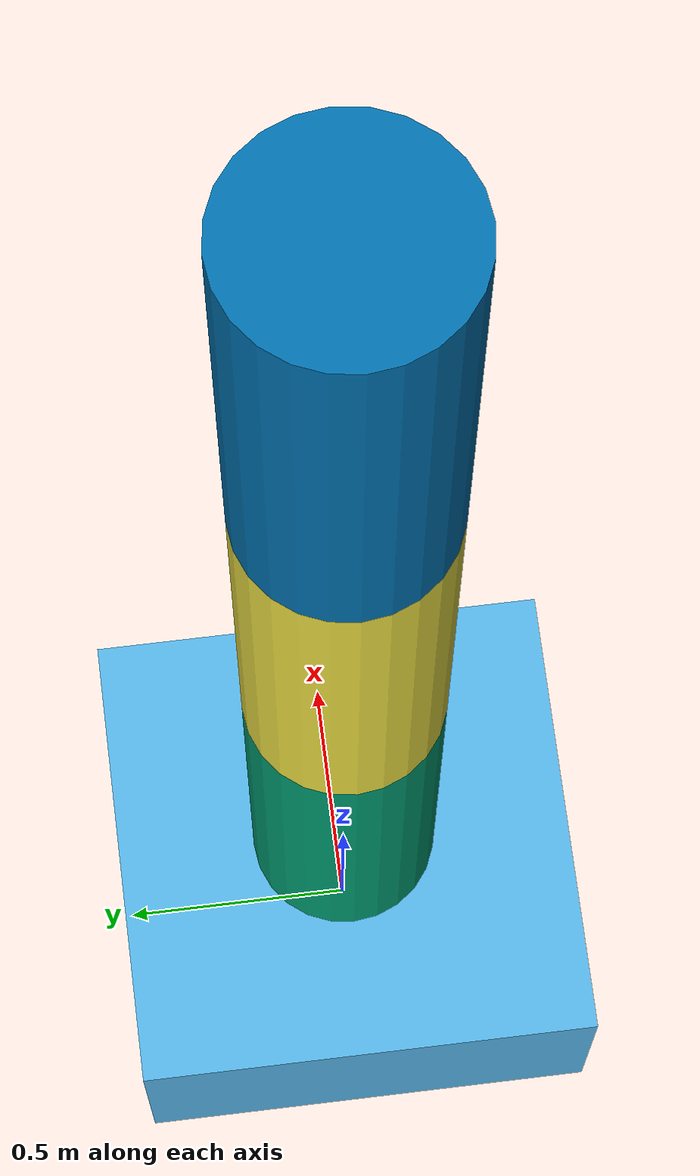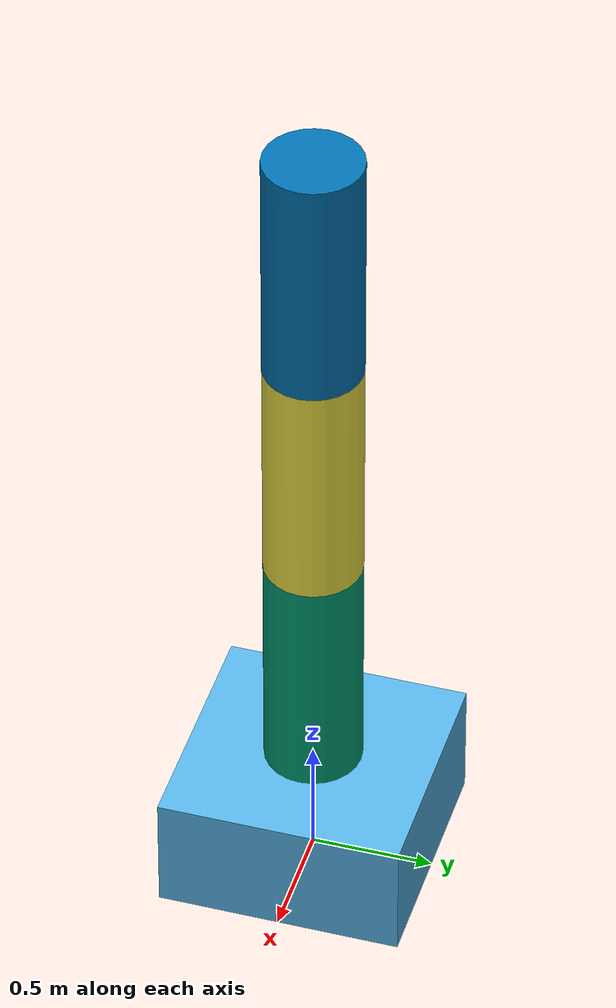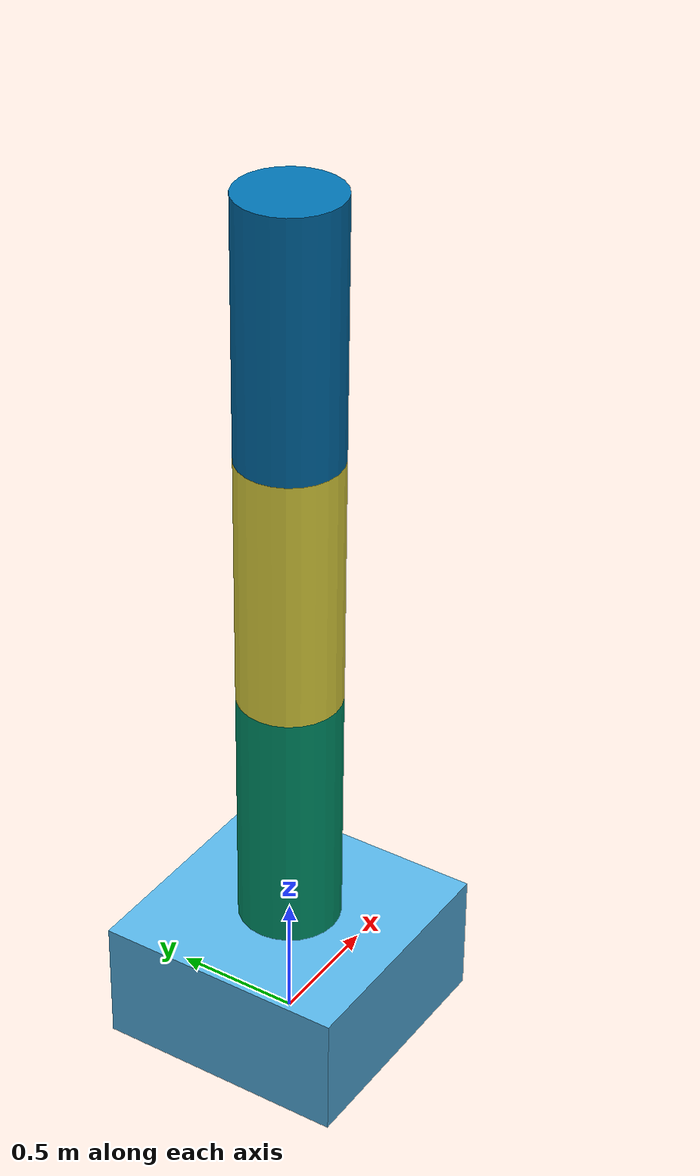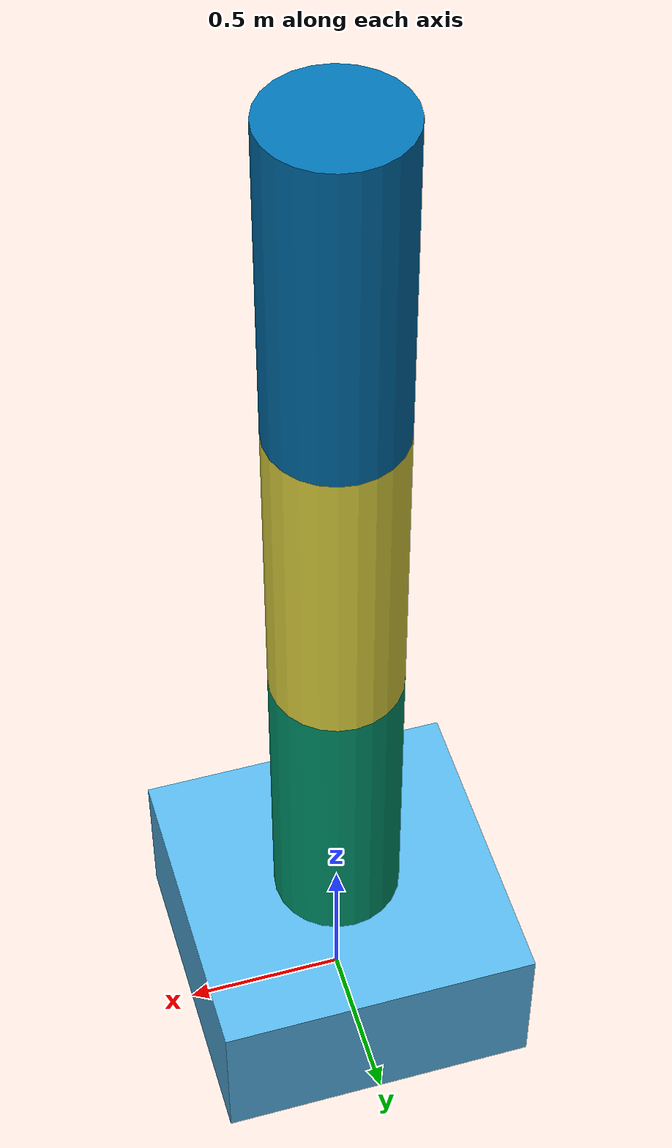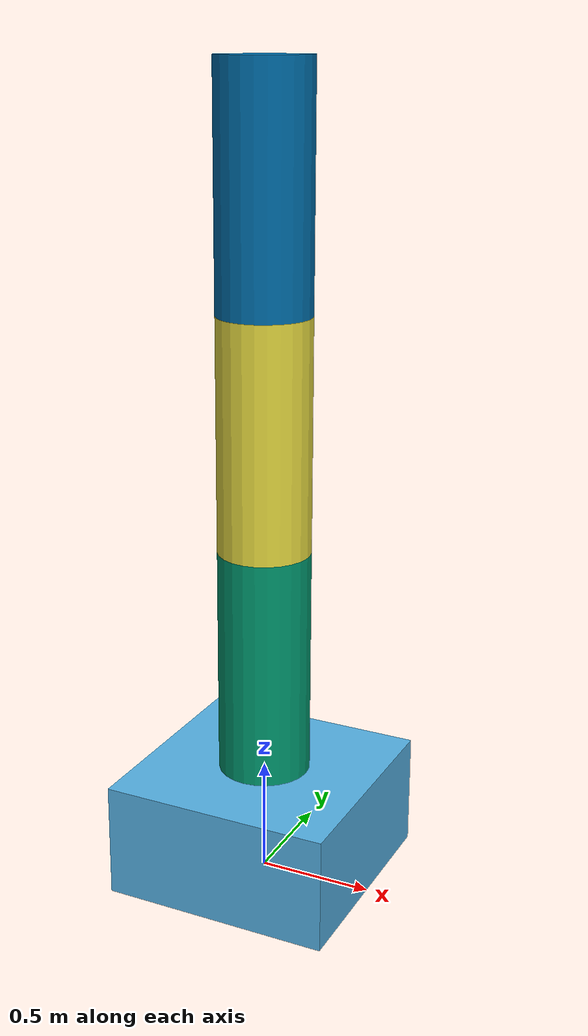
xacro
<?xml version="1.0"?>
<robot name="rrbot_3dof">
  <link name="base_link">
  </link>
  <joint name="j0" type="fixed">
    <parent link="base_link"/>
    <child link="l0"/>
    <origin xyz="0 0 0" rpy="0 0 0"/>
  </joint>
  <link name="l0">
    <visual>
      <geometry>
        <box size="1 1 0.5"/>
      </geometry>
      <origin xyz="0 0 0.25" rpy="0 0 0"/>
    </visual>
  </link>
  <joint name="j1" type="revolute">
    <parent link="l0"/>
    <child link="l1"/>
    <origin xyz="0 0 0.5" rpy="0 0 0"/>
    <limit lower="-1.57" upper="1.57" effort="10" velocity="1"/>
    <axis xyz="0 0 1"/>
  </joint>
  <link name="l1">
    <visual>
      <geometry>
        <cylinder radius="0.2" length="1.0"/>
      </geometry>
      <origin xyz="0 0 0.5" rpy="0 0 0"/>
    </visual>
    <inertial>
      <mass value="0.1"/>
      <inertia ixx="0.01" ixy="0" ixz="0" iyy="0.01" iyz="0" izz="0.01"/>
    </inertial>
  </link>
  <joint name="j2" type="revolute">
    <parent link="l1"/>
    <child link="l2"/>
    <origin xyz="0 0 1" rpy="0 0 0"/>
    <limit lower="-1.57" upper="1.57" effort="10" velocity="1"/>
    <axis xyz="1 0 0"/>
  </joint>
  <link name="l2">
    <visual>
      <geometry>
        <cylinder radius="0.2" length="1.0"/>
      </geometry>
      <origin xyz="0 0 0.5" rpy="0 0 0"/>
    </visual>
    <inertial>
      <mass value="0.1"/>
      <inertia ixx="0.01" ixy="0" ixz="0" iyy="0.01" iyz="0" izz="0.01"/>
    </inertial>
  </link>
  <joint name="j3" type="revolute">
    <parent link="l2"/>
    <child link="l3"/>
    <origin xyz="0 0 1" rpy="0 0 0"/>
    <limit lower="-1.57" upper="1.57" effort="10" velocity="1"/>
    <axis xyz="1 0 0"/>
  </joint>
  <link name="l3">
    <visual>
      <geometry>
        <cylinder radius="0.2" length="1.0"/>
      </geometry>
      <origin xyz="0 0 0.5" rpy="0 0 0"/>
    </visual>
    <inertial>
      <mass value="0.1"/>
      <inertia ixx="0.01" ixy="0" ixz="0" iyy="0.01" iyz="0" izz="0.01"/>
    </inertial>
  </link>
  <!-- ros2_control plugin -->
  <ros2_control name="RRBotSystemPositionOnly" type="system">
    <hardware>
      <plugin>mock_components/GenericSystem</plugin>
    </hardware>
    <joint name="j1">
      <command_interface name="position"/>
      <state_interface name="position"/>
      <state_interface name="velocity"/>
    </joint>
    <joint name="j2">
      <command_interface name="position"/>
      <state_interface name="position"/>
      <state_interface name="velocity"/>
    </joint>
    <joint name="j3">
      <command_interface name="position"/>
      <state_interface name="position"/>
      <state_interface name="velocity"/>
    </joint>
  </ros2_control>
</robot>
